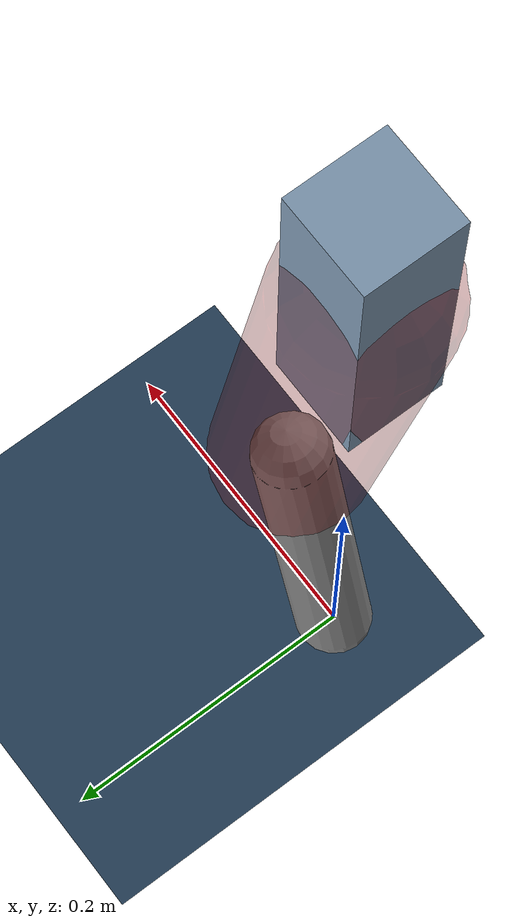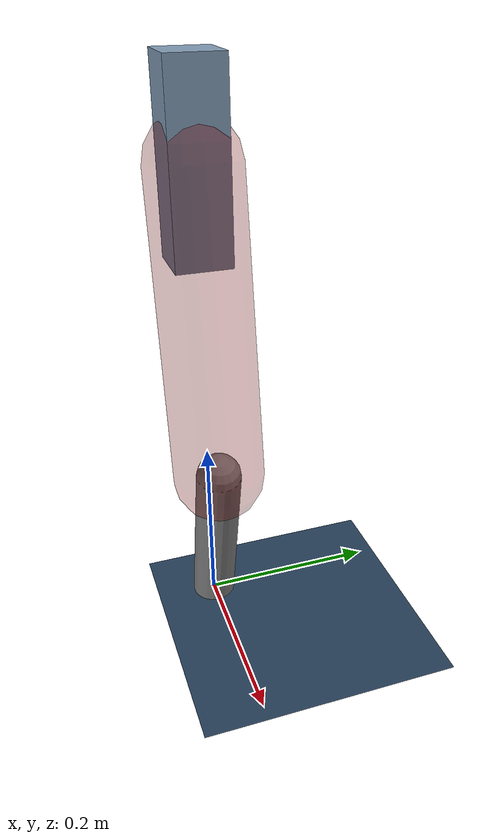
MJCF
<mujoco model="Hopper2D">
	<compiler inertiafromgeom="true" angle="radian" />
	<option timestep="0.001" integrator="implicit" cone="elliptic" solver="Newton" tolerance="1e-10" />

	<default>
		<geom contype="1" conaffinity="1" condim="3" friction="2 0.005 0.0001" solref="0.005 1" />
		<joint limited="true" damping="0.1" />
	</default>

	<asset>
		<texture name="skybox" type="skybox" builtin="gradient" rgb1=".4 .6 .8" rgb2="0 0 0" width="800" height="800" />
		<texture name="grid" type="2d" builtin="checker" rgb1=".1 .2 .3" rgb2=".2 .3 .4" width="300" height="300" mark="edge" markrgb=".2 .3 .4" />
		<material name="ground" texture="grid" texrepeat="1 1" texuniform="true" reflectance="0.1" />
		<material name="leg" rgba="0.5 0.6 0.7 1" />
	</asset>

	<worldbody>

		<geom name="floor" type="plane" size="5 5 0.25" material="ground" />

		<light directional="false" diffuse="0.8 0.8 0.8" specular="0.3 0.3 0.3" pos="0 0 2" dir="0 0 -1" />
		<light mode="targetbodycom" target="base" directional="false" diffuse="0.8 0.8 0.8" specular="0.3 0.3 0.3" pos="0 0 2" dir="0 0 -1" />

		<camera name="fixed" pos="0 -2 1" xyaxes="1 0 0 0 0 1" />
		<camera name="tracking" mode="trackcom" pos="0 -3 1" />

		<body name="root" pos="0 0 0.5265261051190866">
			<joint name="slide_x" type="slide" axis="1 0 0" range="-100 100" />
			<joint name="slide_z" type="slide" axis="0 0 1" range="0 10" />

			<body name="base" pos="0 0 0">
				<geom name="torso" type="box" size="0.03 0.03 0.1" mass="3.056" material="leg" />

				<body name="link1" pos="0 0 0" euler="0 1.419218085201863 0">
					<joint type="hinge" axis="0 -1 0" pos="0 0 0" name="hinge1" limited="true" range="-3.14 3.14" stiffness="0" damping="0.1" />
					<geom name="thigh" type="capsule" fromto="0 0 0 0.3314342701097154 0 0" size="0.05" rgba="0.5 0 0 0.3" mass="1.074815956307203" />

					<body name="link2" pos="0.3314342701097154 0 0" euler="0 0.398085027269161 0">
						<joint type="hinge" axis="0 -1 0" pos="0 0 0" name="hinge2" limited="true" range="-3.14 3.14" stiffness="0" damping="0.1" />
						<geom name="shank" type="capsule" fromto="0 0 0 0.20509183500937128 0 0" size="0.025" mass="0.40517346800749704" />

					</body>
				</body>
			</body>
		</body>
	</worldbody>

	<actuator>
		<motor name="torque1" joint="hinge1" ctrlrange="-173.43836977595075 173.43836977595075" ctrllimited="true" gear="1" />
		<motor name="torque2" joint="hinge2" ctrlrange="-43.65575757827774 43.65575757827774" ctrllimited="true" gear="1" />
	</actuator>
</mujoco>
